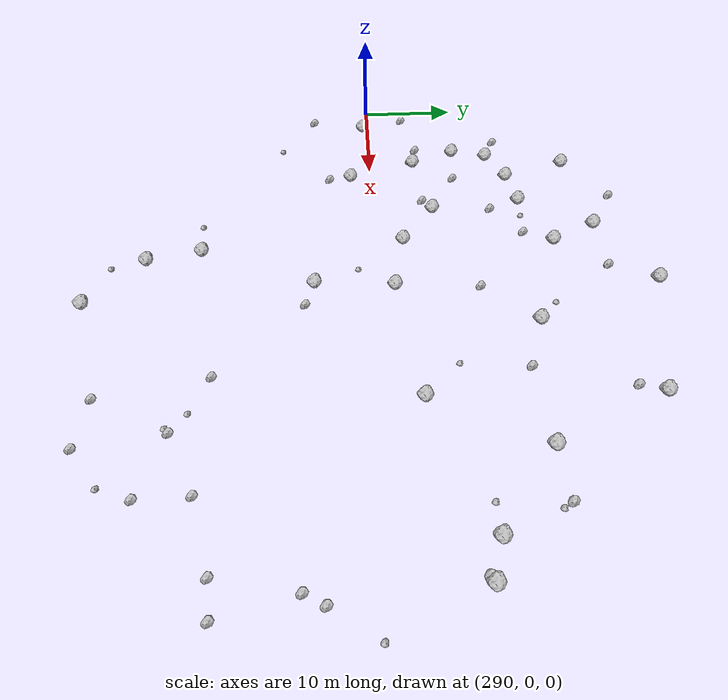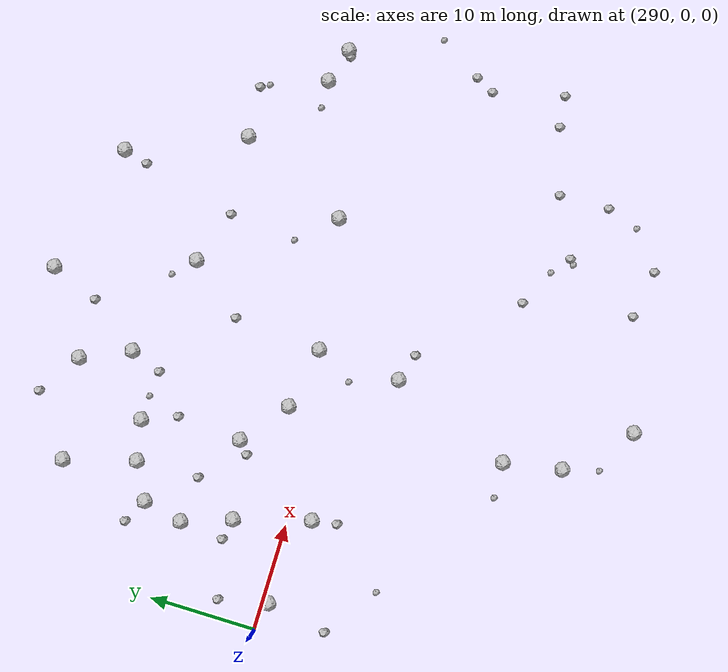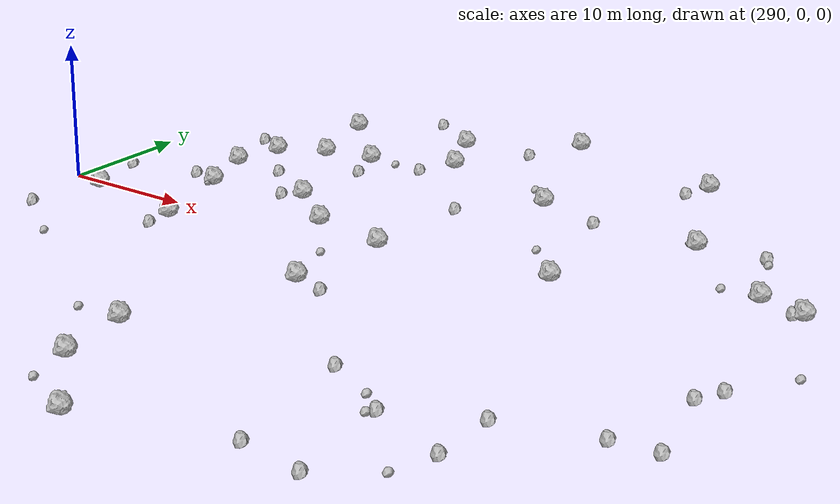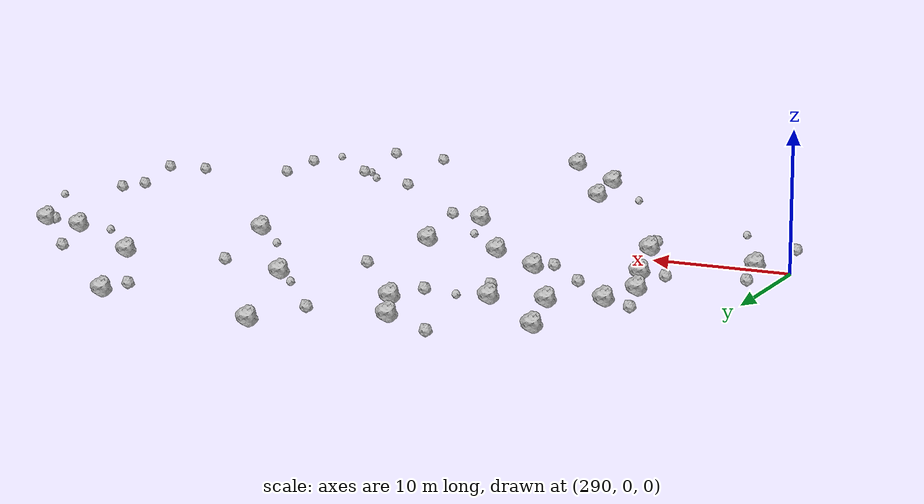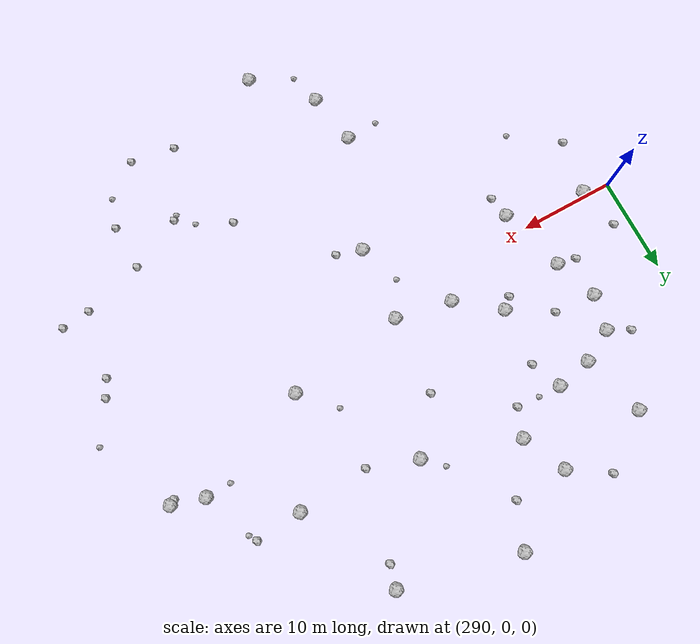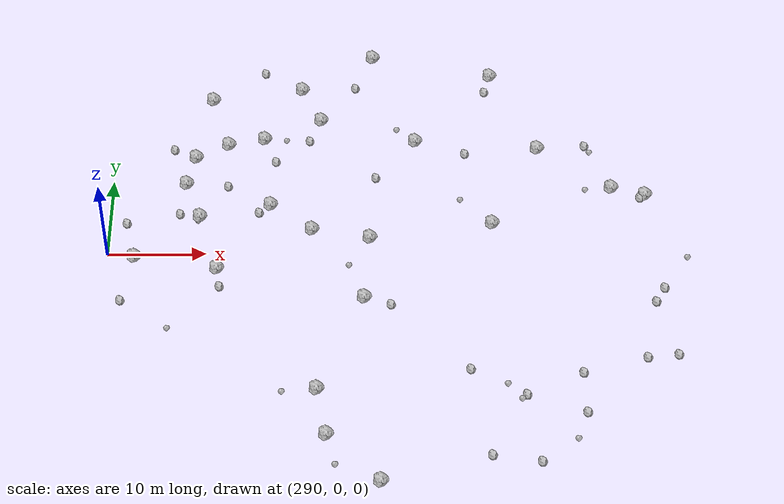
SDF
<sdf version="1.6">
 <world name="default">
  <include><uri>model://sun</uri></include>
  <model name="rock1_8_3">
   <include><uri>model://rock1</uri><pose>299.8453063079859 21.637526912839398 0.5 0 0 0</pose></include>
  </model>
  <model name="rock1_8_4">
   <include><uri>model://rock1</uri><pose>334.08638338120284 14.182534317814408 0.5 0 0 0</pose></include>
  </model>
  <model name="rock1_8_5">
   <include><uri>model://rock1</uri><pose>299.14291788734056 4.847193651203568 0.5 0 0 0</pose></include>
  </model>
  <model name="rock1_8_6">
   <include><uri>model://rock1</uri><pose>310.6355993379801 2.9793195223327444 0.5 0 0 0</pose></include>
  </model>
  <model name="rock1_8_7">
   <include><uri>model://rock1</uri><pose>311.39583546521425 -17.595767002324635 0.5 0 0 0</pose></include>
  </model>
  <model name="rock1_8_8">
   <include><uri>model://rock1</uri><pose>341.4853204373778 8.500221980340612 0.5 0 0 0</pose></include>
  </model>
  <model name="rock1_8_9">
   <include><uri>model://rock1</uri><pose>316.84978278723366 27.977070158293138 0.5 0 0 0</pose></include>
  </model>
  <model name="rock1_8_10">
   <include><uri>model://rock1</uri><pose>309.3267081904767 23.102968392231084 0.5 0 0 0</pose></include>
  </model>
  <model name="rock1_8_11">
   <include><uri>model://rock1</uri><pose>317.56366153376314 -28.50792721332723 0.5 0 0 0</pose></include>
  </model>
  <model name="rock1_8_12">
   <include><uri>model://rock1</uri><pose>315.9805065509635 -6.131004195983252 0.5 0 0 0</pose></include>
  </model>
  <model name="rock1_8_13">
   <include><uri>model://rock1</uri><pose>297.57253367426915 9.43785100634144 0.5 0 0 0</pose></include>
  </model>
  <model name="rock1_8_14">
   <include><uri>model://rock1</uri><pose>311.3835934546955 18.511857825977977 0.5 0 0 0</pose></include>
  </model>
  <model name="rock1_8_15">
   <include><uri>model://rock1</uri><pose>306.34089680337945 6.408558482576339 0.5 0 0 0</pose></include>
  </model>
  <model name="rock1_8_16">
   <include><uri>model://rock1</uri><pose>305.4914167848586 15.776569593092375 0.5 0 0 0</pose></include>
  </model>
  <model name="rock1_8_17">
   <include><uri>model://rock1</uri><pose>301.73442644243505 14.995166372861966 0.5 0 0 0</pose></include>
  </model>
  <model name="rock1_8_18">
   <include><uri>model://rock1</uri><pose>298.395370360829 13.170173200884307 0.5 0 0 0</pose></include>
  </model>
  <model name="rock1_8_19">
   <include><uri>model://rock1</uri><pose>321.2964121032961 15.342441702548811 0.5 0 0 0</pose></include>
  </model>
  <model name="rock1_8_20">
   <include><uri>model://rock1</uri><pose>316.53965104652576 1.8027623117709837 0.5 0 0 0</pose></include>
  </model>
  <model name="rock1_8_21">
   <include><uri>model://rock1</uri><pose>301.1498058742993 -2.1828008040735583 0.5 0 0 0</pose></include>
  </model>
  <model name="rock1_8_22">
   <include><uri>model://rock1</uri><pose>344.90240581138767 7.4826144044993725 0.5 0 0 0</pose></include>
  </model>
  <model name="rock1_8_23">
   <include><uri>model://rock1</uri><pose>292.76943212660757 -0.5642946669895679 0.5 0 0 0</pose></include>
  </model>
  <model name="rock1_8_24">
   <include><uri>model://rock1</uri><pose>312.373996319912 -23.05907114327764 0.5 0 0 0</pose></include>
  </model>
  <model name="rock1_8_25">
   <include><uri>model://rock1</uri><pose>329.01946481139373 3.66591329367283 0.5 0 0 0</pose></include>
  </model>
  <model name="rock1_8_26">
   <include><uri>model://rock1</uri><pose>329.45621645855704 25.056743249761972 0.5 0 0 0</pose></include>
  </model>
  <model name="rock2_8_0">
   <include><uri>model://rock2</uri><pose>301.8767502120068 9.108863275644595 0.3 0 0 0</pose></include>
  </model>
  <model name="rock2_8_1">
   <include><uri>model://rock2</uri><pose>326.4484120107689 13.574877656548395 0.3 0 0 0</pose></include>
  </model>
  <model name="rock2_8_2">
   <include><uri>model://rock2</uri><pose>344.35141959747415 7.169759743266141 0.3 0 0 0</pose></include>
  </model>
  <model name="rock2_8_3">
   <include><uri>model://rock2</uri><pose>328.7799296170457 22.712128113518816 0.3 0 0 0</pose></include>
  </model>
  <model name="rock2_8_4">
   <include><uri>model://rock2</uri><pose>314.9724330766593 23.40755067667333 0.3 0 0 0</pose></include>
  </model>
  <model name="rock2_8_5">
   <include><uri>model://rock2</uri><pose>301.4777286240691 -4.496344823760417 0.3 0 0 0</pose></include>
  </model>
  <model name="rock2_8_6">
   <include><uri>model://rock2</uri><pose>344.9601775710967 -6.840295967738697 0.3 0 0 0</pose></include>
  </model>
  <model name="rock2_8_7">
   <include><uri>model://rock2</uri><pose>297.09212530450765 5.275500731421403 0.3 0 0 0</pose></include>
  </model>
  <model name="rock2_8_8">
   <include><uri>model://rock2</uri><pose>343.56182848300637 -13.922976896355795 0.3 0 0 0</pose></include>
  </model>
  <model name="rock2_8_9">
   <include><uri>model://rock2</uri><pose>328.053119064533 -25.528419044565354 0.3 0 0 0</pose></include>
  </model>
  <model name="rock2_8_10">
   <include><uri>model://rock2</uri><pose>331.6201402852092 -18.382986425004805 0.3 0 0 0</pose></include>
  </model>
  <model name="rock2_8_11">
   <include><uri>model://rock2</uri><pose>291.73874792201815 4.028249900702093 0.3 0 0 0</pose></include>
  </model>
  <model name="rock2_8_12">
   <include><uri>model://rock2</uri><pose>326.30030290492664 -15.228416104878802 0.3 0 0 0</pose></include>
  </model>
  <model name="rock2_8_13">
   <include><uri>model://rock2</uri><pose>339.049685958519 14.583730408202427 0.3 0 0 0</pose></include>
  </model>
  <model name="rock2_8_14">
   <include><uri>model://rock2</uri><pose>337.3038057254065 -20.55109095345619 0.3 0 0 0</pose></include>
  </model>
  <model name="rock2_8_15">
   <include><uri>model://rock2</uri><pose>318.62474728068844 -6.987415712165102 0.3 0 0 0</pose></include>
  </model>
  <model name="rock2_8_16">
   <include><uri>model://rock2</uri><pose>305.289128277876 25.76427933135163 0.3 0 0 0</pose></include>
  </model>
  <model name="rock2_8_17">
   <include><uri>model://rock2</uri><pose>305.1762077027255 5.420415765755244 0.3 0 0 0</pose></include>
  </model>
  <model name="rock2_8_18">
   <include><uri>model://rock2</uri><pose>346.60847070593337 -13.588115496490932 0.3 0 0 0</pose></include>
  </model>
  <model name="rock2_8_19">
   <include><uri>model://rock2</uri><pose>291.6960467416861 -6.236285933176649 0.3 0 0 0</pose></include>
  </model>
  <model name="rock2_8_20">
   <include><uri>model://rock2</uri><pose>317.1324832053349 10.193042992973325 0.3 0 0 0</pose></include>
  </model>
  <model name="rock2_8_21">
   <include><uri>model://rock2</uri><pose>310.2138648613187 15.561067763178421 0.3 0 0 0</pose></include>
  </model>
  <model name="rock2_8_22">
   <include><uri>model://rock2</uri><pose>337.19983098078 -15.748382783311964 0.3 0 0 0</pose></include>
  </model>
  <model name="rock2_8_23">
   <include><uri>model://rock2</uri><pose>296.0765901366819 14.390927904723782 0.3 0 0 0</pose></include>
  </model>
  <model name="rock2_8_24">
   <include><uri>model://rock2</uri><pose>345.9152976598995 -5.052259575078256 0.3 0 0 0</pose></include>
  </model>
  <model name="rock2_8_25">
   <include><uri>model://rock2</uri><pose>306.7314039880198 12.579324415569772 0.3 0 0 0</pose></include>
  </model>
  <model name="rock2_8_26">
   <include><uri>model://rock2</uri><pose>332.6976421319348 -26.3165983092889 0.3 0 0 0</pose></include>
  </model>
  <model name="rock3_8_0">
   <include><uri>model://rock3</uri><pose>307.9956444937196 -17.787874362149775 0.2 0 0 0</pose></include>
  </model>
  <model name="rock3_8_1">
   <include><uri>model://rock3</uri><pose>298.9587521088062 4.383858074854999 0.2 0 0 0</pose></include>
  </model>
  <model name="rock3_8_2">
   <include><uri>model://rock3</uri><pose>307.7654143705231 15.722753923406977 0.2 0 0 0</pose></include>
  </model>
  <model name="rock3_8_3">
   <include><uri>model://rock3</uri><pose>348.54086045547626 -0.9865643742938772 0.2 0 0 0</pose></include>
  </model>
  <model name="rock3_8_4">
   <include><uri>model://rock3</uri><pose>314.4045275061797 -1.7451550937631453 0.2 0 0 0</pose></include>
  </model>
  <model name="rock3_8_5">
   <include><uri>model://rock3</uri><pose>319.33746343923065 17.200989089106663 0.2 0 0 0</pose></include>
  </model>
  <model name="rock3_8_6">
   <include><uri>model://rock3</uri><pose>296.5256691681919 -9.80041460629326 0.2 0 0 0</pose></include>
  </model>
  <model name="rock3_8_7">
   <include><uri>model://rock3</uri><pose>338.76998826886665 8.377718138266893 0.2 0 0 0</pose></include>
  </model>
  <model name="rock3_8_8">
   <include><uri>model://rock3</uri><pose>313.2210947074897 -26.465058048193782 0.2 0 0 0</pose></include>
  </model>
  <model name="rock3_8_9">
   <include><uri>model://rock3</uri><pose>331.14130713020774 -18.829742021005167 0.2 0 0 0</pose></include>
  </model>
  <model name="rock3_8_10">
   <include><uri>model://rock3</uri><pose>336.2380904540768 -23.63643025562815 0.2 0 0 0</pose></include>
  </model>
  <model name="rock3_8_11">
   <include><uri>model://rock3</uri><pose>329.823305165072 -17.00291515987498 0.2 0 0 0</pose></include>
  </model>
  <model name="rock3_8_12">
   <include><uri>model://rock3</uri><pose>325.8045593082966 7.0846102012998315 0.2 0 0 0</pose></include>
  </model>
  <model name="rock3_8_13">
   <include><uri>model://rock3</uri><pose>339.5106330064151 13.733101819869475 0.2 0 0 0</pose></include>
  </model>
 </world>
</sdf>
